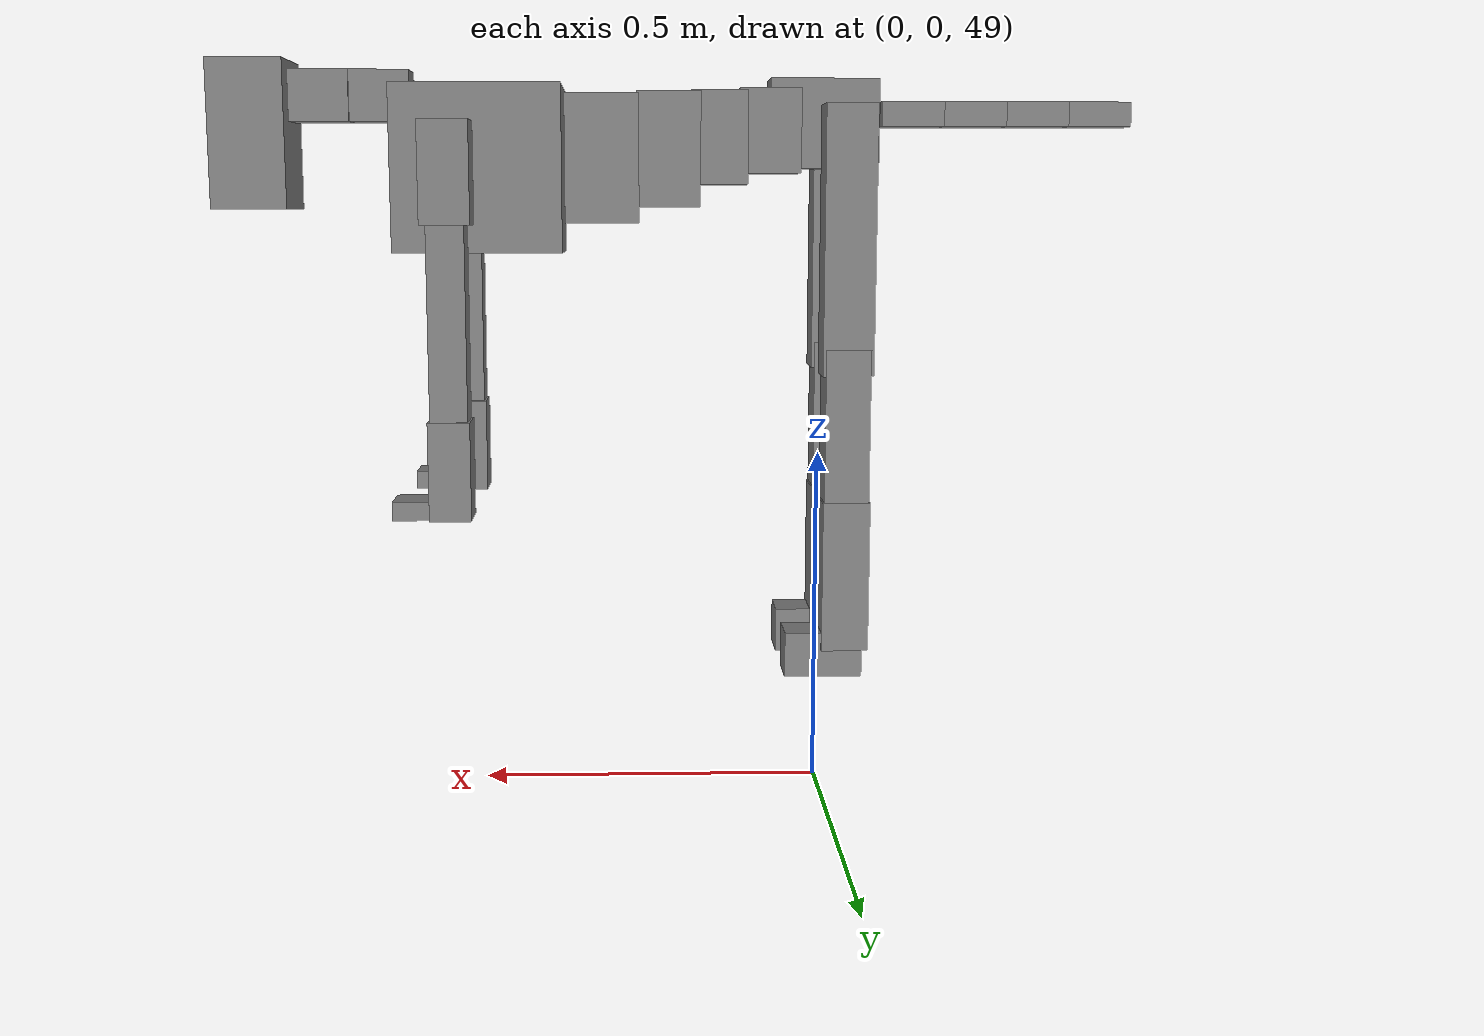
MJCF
<mujoco model="dog">

    <default>
        <joint armature="0.02" stiffness="1" damping="0.2" limited="true"/>
        <geom condim="3" friction="1 0.05 0.05" margin="0.01"/>
        <motor ctrllimited="true" ctrlrange="-1.0 1.0" forcelimited="true" gear="50"/>
    </default>

    <compiler inertiafromgeom="true" angle="radian"/>

    <option timestep="0.016" iterations="50" tolerance="1e-10" solver="Newton" jacobian="dense" cone="pyramidal"/>

    <size nconmax="20000" njmax="60000" nstack="5000000"/>
    <visual>
        <map force="0.1" zfar="30"/>
        <rgba haze="0.15 0.25 0.35 1"/>
        <quality shadowsize="2048"/>
        <global offwidth="800" offheight="800"/>
    </visual>

    <asset>
        <texture type="skybox" builtin="gradient" rgb1="0.3 0.5 0.7" rgb2="0 0 0" width="512" height="512"/>
        <texture name="texplane" type="2d" builtin="checker" rgb1=".2 .3 .4" rgb2=".1 0.15 0.2" width="512" height="512"
                 mark="cross" markrgb=".8 .8 .8"/>
        <texture name="texgeom" type="cube" builtin="flat" mark="cross" width="127" height="1278" rgb1="0.8 0.6 0.4"
                 rgb2="0.8 0.6 0.4" markrgb="1 1 1" random="0.01"/>

        <material name="matplane" reflectance="0.3" texture="texplane" texrepeat="1 1" texuniform="true"/>
        <material name="matgeom" texture="texgeom" texuniform="true" rgba="0.8 0.6 .4 1"/>
    </asset>

    <worldbody>
        <geom name="floor" pos="0 0 0" size="0 0 .25" type="plane" material="matplane" condim="3"/>

        <light directional="false" diffuse=".2 .2 .2" specular="0 0 0" pos="0 0 5" dir="0 0 -1" castshadow="false"/>
        <light mode="targetbodycom" target="torso" directional="false" diffuse=".8 .8 .8" specular="0.3 0.3 0.3"
               pos="0 0 4.0" dir="0 0 -1"/>

        <body name="root" pos="0 0 50">
            <freejoint name="root_1"/>
            <geom type="box" pos="0 0 -0.02" size="0.0774  0.0358  0.063" density="2030"/>

            <body name="spine1" pos="0.054 0 0">
                <joint name="spine1_y" axis="0 1 0" range="0 0.7" limited="true"/>
                <geom type="box" pos="0.02375 0 -0.03" size="0.04375  0.0375  0.05985" density="2030"/>

                <body name="spine2" pos="0.0612 0 0">
                    <joint name="spine2_y" axis="0 1 0" range="-0.15 0.15" limited="true"/>
                    <geom type="box" pos="0.03555  0  -0.04" size="0.04055  0.039  0.06615" density="2030"/>

                    <body name="spine3" pos="0.0730 0 0">
                        <joint name="spine3_y" axis="0 1 0" range="-0.15 0.15" limited="true"/>
                        <geom type="box" pos="0.03555  0  -0.057" size="0.04555  0.0445  0.081" density="2030"/>

                        <body name="spine4" pos="0.0780 0 0">
                            <joint name="spine4_y" axis="0 1 0" range="-0.15 0.15" limited="true"/>
                            <geom type="box" pos="0.05265  0  -0.07" size="0.05265  0.045  0.09135" density="2030"/>

                            <body name="torso" pos="0.1082 0 0">
                                <joint name="torso_y" axis="0 1 0" range="-0.15 0.15" limited="true"/>
                                <geom type="box" pos="0.11925  0  -0.085" size="0.11925  0.085  0.11745"
                                      density="2030"/>

                                <body name="neck1" pos="0.2160  0   0.0180">
                                    <joint name="neck1_y" axis="0 1 0" range="-1.2  -1" limited="true"/>
                                    <geom type="box" pos="0.0423  0  0" size="0.0423  0.03  0.036" density="2325"/>

                                    <body name="neck2" pos="0.0853  0  0">
                                        <joint name="neck2_y" axis="0 1 0" range="0.1  0" limited="true"/>
                                        <geom type="box" pos="0.0423  0  0" size="0.0423  0.03  0.036" density="2325"/>

                                        <body name="head" pos="0.0853  0  0">
                                            <joint name="head_y" axis="0 1 0" range="-0.3  -0.2" limited="true"/>
                                            <geom type="box" pos="0.0531  0  -0.055" size="0.0531  0.06  0.1044"
                                                  density="4030"/>

                                        </body>
                                    </body>
                                </body>

                                <body name="front_shoulder" pos="0.156  0   -0.0480">
                                    <joint name="front_shoulder_y" axis="0 1 0" range="-1 1.5" limited="true"/>
                                    <geom type="box" pos="0 0.13 -0.0441" size="0.0346  0.0296  0.0707" density="1158"/>
                                    <geom type="box" pos="0 -0.13 -0.0441" size="0.0346  0.0296  0.0707"
                                          density="1158"/>

                                    <body name="front_elbow" pos="0  0  -0.0882">
                                        <joint name="front_elbow_y" axis="0 1 0" range="-2 0" limited="true"/>
                                        <geom type="box" pos="0 0.13 -0.1544" size="0.0261  0.0266  0.1544"
                                              density="1081"/>
                                        <geom type="box" pos="0 -0.13 -0.1544" size="0.0261  0.0266  0.1544"
                                              density="1081"/>

                                        <body name="front_wrist" pos="0  0  -0.3088">
                                            <joint name="front_wrist_y" axis="0 1 0" range="-0.2 0" limited="true"/>
                                            <geom type="box" pos="0 0.13 -0.0560" size="0.0292  0.0324  0.0692"
                                                  density="1664"/>
                                            <geom type="box" pos="0 -0.13 -0.0560" size="0.0292  0.0324  0.0692"
                                                  density="1664"/>

                                            <body name="front_finger_end" pos="0  0  -0.1120">
                                                <joint name="front_finger_y" axis="0 1 0" range="-0.4 1"
                                                       limited="true"/>
                                                <geom type="box" pos="0.0283  0.13  0.0017"
                                                      size="0.0518  0.0283  0.0133" density="1515"/>
                                                <geom type="box" pos="0.0283  -0.13  0.0017"
                                                      size="0.0518  0.0283  0.0133" density="1515"/>

                                            </body>

                                        </body>
                                    </body>
                                </body>

                            </body>
                        </body>
                    </body>
                </body>
            </body>

            <body name="back_hip" pos="-0.03 0 -0.018">
                <joint name="back_hip_y" axis="0 1 0" range="-1.5 0.3" limited="true"/>
                <geom type="box" pos="0 0.07 -0.1676" size="0.0364  0.0285  0.1904" density="1154"/>
                <geom type="box" pos="0 -0.07 -0.1676" size="0.0364  0.0285  0.1904" density="1154"/>

                <body name="back_knee" pos="0  0  -0.3353">
                    <joint name="back_knee_y" axis="0 1 0" range="0 2.8" limited="true"/>
                    <geom type="box" pos="0 0.07 -0.1080" size="0.0321  0.0316  0.1235" density="1227"/>
                    <geom type="box" pos="0 -0.07 -0.1080" size="0.0321  0.0316  0.1235" density="1227"/>

                    <body name="back_ankle" pos="0  0  -0.2160">
                        <joint name="back_ankle_y" axis="0 1 0" range="-2.2 0" limited="true"/>
                        <geom type="box" pos="0 0.07 -0.0979" size="0.0339  0.0339  0.1091" density="1284"/>
                        <geom type="box" pos="0 -0.07 -0.0979" size="0.0339  0.0339  0.1091" density="1284"/>

                        <body name="back_toe_end" pos="0  0  -0.1958">
                            <joint name="back_toe_y" axis="0 1 0" range="-0.4 1" limited="true"/>
                            <geom type="box" pos="0.0305  0.07  -0.0178" size="0.0560  0.0305  0.0328" density="1515"/>
                            <geom type="box" pos="0.0305  -0.07  -0.0178" size="0.0560  0.0305  0.0328" density="1515"/>

                        </body>
                    </body>
                </body>
            </body>

            <body name="tail1" pos="-0.074 0 -0.006">
                <joint name="tail1_y" axis="0 1 0" range="-0.2 0.2" limited="true"/>
                <geom type="box" pos="-0.0536  0  0" size="0.045  0.025  0.0175" density="1587"/>

                <body name="tail2" pos="-0.09 0 0">
                    <joint name="tail2_y" axis="0 1 0" range="-0.2 0.2" limited="true"/>
                    <geom type="box" pos="-0.0536  0  0" size="0.045  0.025  0.0175" density="1587"/>

                    <body name="tail3" pos="-0.09 0 0">
                        <joint name="tail3_y" axis="0 1 0" range="-0.2 0.2" limited="true"/>
                        <geom type="box" pos="-0.0536  0  0" size="0.045  0.025  0.0175" density="1587"/>

                        <body name="tail4" pos="-0.09 0 0">
                            <joint name="tail4_y" axis="0 1 0" range="-0.2 0.2" limited="true"/>
                            <geom type="box" pos="-0.0536  0  0" size="0.045  0.025  0.0175" density="1587"/>

                        </body>
                    </body>
                </body>
            </body>
        </body>
    </worldbody>

    <actuator>
        <motor joint="spine1_y" forcerange="-150 150     "/>
        <motor joint="spine2_y" forcerange="-150 150     "/>
        <motor joint="spine3_y" forcerange="-150 150     "/>
        <motor joint="spine4_y" forcerange="-150 150     "/>
        <motor joint="torso_y" forcerange="-150 150     "/>
        <motor joint="neck1_y" forcerange="-100 100       "/>
        <motor joint="neck2_y" forcerange="-100 100       "/>
        <motor joint="head_y" forcerange="-150 150       "/>
        <motor joint="front_shoulder_y" forcerange="-117.64 179.50"/>
        <motor joint="front_elbow_y" forcerange="-148.71 145.02"/>
        <motor joint="front_wrist_y" forcerange="-129.42 130.10"/>
        <motor joint="front_finger_y" forcerange="-38.99 71.78"/>
        <motor joint="back_hip_y" forcerange="-356.65 223.87"/>
        <motor joint="back_knee_y" forcerange="-367.29 292.41"/>
        <motor joint="back_angle_y" forcerange="-234.13 208.19"/>
        <motor joint="back_toe_y" forcerange="-81.86 82.48"/>
        <motor joint="tail1_y" forcerange="-50 50     "/>
        <motor joint="tail2_y" forcerange="-50 50     "/>
        <motor joint="tail3_y" forcerange="-50 50     "/>
        <motor joint="tail4_y" forcerange="-50 50     "/>
    </actuator>
</mujoco>
